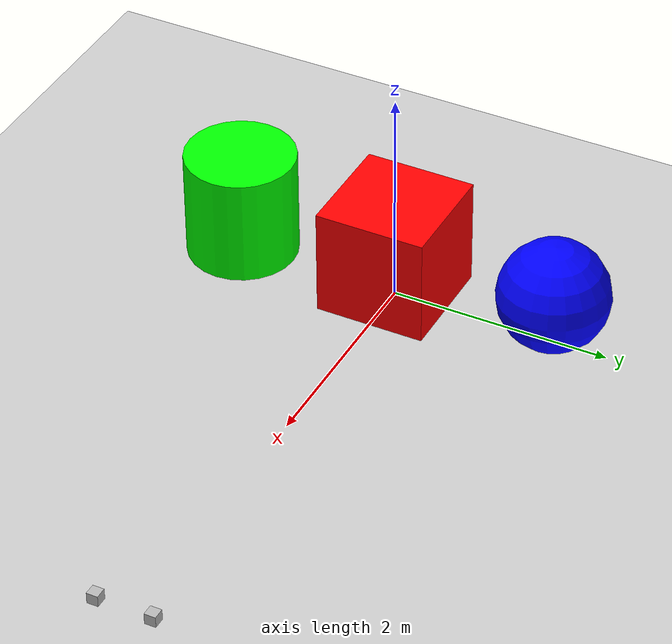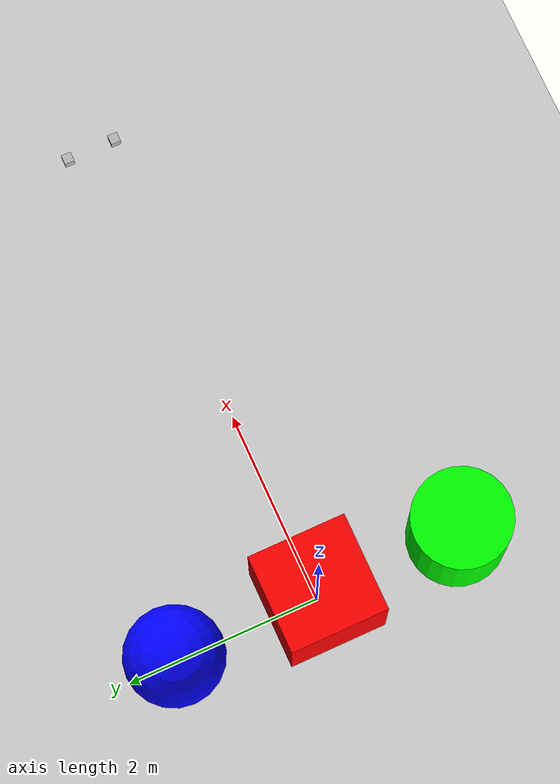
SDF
<?xml version="1.0" ?>

<sdf version="1.7">
  <world name="shapes">
    <plugin
      filename="gz-sim-apply-link-wrench-system"
      name="gz::sim::systems::ApplyLinkWrench">
    </plugin>

    <physics name="1ms" type="ode">
      <max_step_size>0.001</max_step_size>
      <real_time_factor>1.0</real_time_factor>
    </physics>
    <plugin
      filename="gz-sim-physics-system"
      name="gz::sim::systems::Physics">
    </plugin>
    <plugin
      filename="gz-sim-sensors-system"
      name="gz::sim::systems::Sensors">
      <render_engine>ogre2</render_engine>
    </plugin>
    <plugin
      filename="gz-sim-user-commands-system"
      name="gz::sim::systems::UserCommands">
    </plugin>
    <plugin
      filename="gz-sim-scene-broadcaster-system"
      name="gz::sim::systems::SceneBroadcaster">
    </plugin>

    <scene>
      <ambient>1.0 1.0 1.0</ambient>
      <background>0.8 0.8 0.8</background>
    </scene>

    <gui fullscreen="0">

      <!-- 3D scene -->
      <plugin filename="MinimalScene" name="3D View">
        <gz-gui>
          <title>3D View</title>
          <property type="bool" key="showTitleBar">false</property>
          <property type="string" key="state">docked</property>
        </gz-gui>

        <engine>ogre2</engine>
        <scene>scene</scene>
        <ambient_light>0.4 0.4 0.4</ambient_light>
        <background_color>0.8 0.8 0.8</background_color>
        <camera_pose>-6 0 6 0 0.5 0</camera_pose>
      </plugin>

      <!-- Plugins that add functionality to the scene -->
      <plugin filename="EntityContextMenuPlugin" name="Entity context menu">
        <gz-gui>
          <property key="state" type="string">floating</property>
          <property key="width" type="double">5</property>
          <property key="height" type="double">5</property>
          <property key="showTitleBar" type="bool">false</property>
        </gz-gui>
      </plugin>
      <plugin filename="GzSceneManager" name="Scene Manager">
        <gz-gui>
          <property key="resizable" type="bool">false</property>
          <property key="width" type="double">5</property>
          <property key="height" type="double">5</property>
          <property key="state" type="string">floating</property>
          <property key="showTitleBar" type="bool">false</property>
        </gz-gui>
      </plugin>
      <plugin filename="InteractiveViewControl" name="Interactive view control">
        <gz-gui>
          <property key="resizable" type="bool">false</property>
          <property key="width" type="double">5</property>
          <property key="height" type="double">5</property>
          <property key="state" type="string">floating</property>
          <property key="showTitleBar" type="bool">false</property>
        </gz-gui>
      </plugin>
      <plugin filename="CameraTracking" name="Camera Tracking">
        <gz-gui>
          <property key="resizable" type="bool">false</property>
          <property key="width" type="double">5</property>
          <property key="height" type="double">5</property>
          <property key="state" type="string">floating</property>
          <property key="showTitleBar" type="bool">false</property>
        </gz-gui>
      </plugin>
      <!-- World control -->
      <plugin filename="WorldControl" name="World control">
        <gz-gui>
          <title>World control</title>
          <property type="bool" key="showTitleBar">false</property>
          <property type="bool" key="resizable">false</property>
          <property type="double" key="height">72</property>
          <property type="double" key="z">1</property>

          <property type="string" key="state">floating</property>
          <anchors target="3D View">
            <line own="left" target="left"/>
            <line own="bottom" target="bottom"/>
          </anchors>
        </gz-gui>

        <play_pause>true</play_pause>
        <step>true</step>
        <start_paused>true</start_paused>
        <use_event>true</use_event>

      </plugin>

      <!-- World statistics -->
      <plugin filename="WorldStats" name="World stats">
        <gz-gui>
          <title>World stats</title>
          <property type="bool" key="showTitleBar">false</property>
          <property type="bool" key="resizable">false</property>
          <property type="double" key="height">110</property>
          <property type="double" key="width">290</property>
          <property type="double" key="z">1</property>

          <property type="string" key="state">floating</property>
          <anchors target="3D View">
            <line own="right" target="right"/>
            <line own="bottom" target="bottom"/>
          </anchors>
        </gz-gui>

        <sim_time>true</sim_time>
        <real_time>true</real_time>
        <real_time_factor>true</real_time_factor>
        <iterations>true</iterations>
      </plugin>

      <!-- Entity tree -->
      <plugin filename="ImageDisplay" name="Image Display">
        <gz-gui>
          <title>RGB camera 0x01</title>
          <property key="state" type="string">docked</property>
        </gz-gui>
        <topic>camera_0x01</topic>
        <topic_picker>false</topic_picker>
      </plugin>

      <plugin filename="ImageDisplay" name="Image Display">
        <gz-gui>
          <title>RGB camera 0x02</title>
          <property key="state" type="string">docked</property>
        </gz-gui>
        <topic>camera_0x02</topic>
        <topic_picker>false</topic_picker>
      </plugin>

      <!-- Inspector -->
      <plugin filename="ComponentInspector" name="Component inspector">
        <gz-gui>
          <property type="string" key="state">docked</property>
        </gz-gui>
      </plugin>

      <!-- Entity tree -->
      <plugin filename="EntityTree" name="Entity tree">
        <gz-gui>
          <property type="string" key="state">docked</property>
        </gz-gui>
      </plugin>
    </gui>

    <light type="directional" name="sun">
      <cast_shadows>true</cast_shadows>
      <pose>0 0 10 0 0 0</pose>
      <diffuse>0.8 0.8 0.8 1</diffuse>
      <specular>0.8 0.8 0.8 1</specular>
      <attenuation>
        <range>1000</range>
        <constant>0.9</constant>
        <linear>0.01</linear>
        <quadratic>0.001</quadratic>
      </attenuation>
      <direction>-0.5 0.1 -0.9</direction>
    </light>

    <model name="ground_plane">
      <static>true</static>
      <link name="link">
        <collision name="collision">
          <geometry>
            <plane>
              <normal>0 0 1</normal>
            </plane>
          </geometry>
        </collision>
        <visual name="visual">
          <geometry>
            <plane>
              <normal>0 0 1</normal>
              <size>100 100</size>
            </plane>
          </geometry>
          <material>
            <ambient>0.8 0.8 0.8 1</ambient>
            <diffuse>0.8 0.8 0.8 1</diffuse>
            <specular>0.8 0.8 0.8 1</specular>
          </material>
        </visual>
      </link>
    </model>

    <model name="box">
      <pose>0 0 0.5 0 0 0</pose>
      <link name="box_link">
        <inertial>
          <inertia>
            <ixx>1</ixx>
            <ixy>0</ixy>
            <ixz>0</ixz>
            <iyy>1</iyy>
            <iyz>0</iyz>
            <izz>1</izz>
          </inertia>
          <mass>1.0</mass>
        </inertial>
        <collision name="box_collision">
          <geometry>
            <box>
              <size>1 1 1</size>
            </box>
          </geometry>
        </collision>

        <visual name="box_visual">
          <visibility_flags>0x01</visibility_flags>
          <geometry>
            <box>
              <size>1 1 1</size>
            </box>
          </geometry>
          <material>
            <ambient>1 0 0 1</ambient>
            <diffuse>1 0 0 1</diffuse>
            <specular>1 0 0 1</specular>
          </material>
        </visual>
      </link>
    </model>

    <model name="cylinder">
      <pose>0 -1.5 0.5 0 0 0</pose>
      <link name="cylinder_link">
        <inertial>
          <inertia>
            <ixx>2</ixx>
            <ixy>0</ixy>
            <ixz>0</ixz>
            <iyy>2</iyy>
            <iyz>0</iyz>
            <izz>2</izz>
          </inertia>
          <mass>2.0</mass>
        </inertial>
        <collision name="cylinder_collision">
          <geometry>
            <cylinder>
              <radius>0.5</radius>
              <length>1.0</length>
            </cylinder>
          </geometry>
        </collision>

        <visual name="cylinder_visual">
          <visibility_flags>0x02</visibility_flags>
          <geometry>
            <cylinder>
              <radius>0.5</radius>
              <length>1.0</length>
            </cylinder>
          </geometry>
          <material>
            <ambient>0 1 0 1</ambient>
            <diffuse>0 1 0 1</diffuse>
            <specular>0 1 0 1</specular>
          </material>
          <cast_shadows>false</cast_shadows>
        </visual>
      </link>
    </model>

    <model name="sphere">
      <pose>0 1.5 0.5 0 0 0</pose>
      <link name="sphere_link">
        <inertial>
          <inertia>
            <ixx>3</ixx>
            <ixy>0</ixy>
            <ixz>0</ixz>
            <iyy>3</iyy>
            <iyz>0</iyz>
            <izz>3</izz>
          </inertia>
          <mass>3.0</mass>
        </inertial>
        <collision name="sphere_collision">
          <geometry>
            <sphere>
              <radius>0.5</radius>
            </sphere>
          </geometry>
        </collision>

        <visual name="sphere_visual">
          <visibility_flags>0x04</visibility_flags>
          <geometry>
            <sphere>
              <radius>0.5</radius>
            </sphere>
          </geometry>
          <material>
            <ambient>0 0 1 1</ambient>
            <diffuse>0 0 1 1</diffuse>
            <specular>0 0 1 1</specular>
          </material>
        </visual>
      </link>
    </model>

    <model name="camera_0x01">
      <static>true</static>
      <pose>5 0 0.5 0 0.0 3.14</pose>
      <link name="link">
        <pose>0.05 0.05 0.05 0 0 0</pose>
        <collision name="collision">
          <geometry>
            <box>
              <size>0.1 0.1 0.1</size>
            </box>
          </geometry>
        </collision>
        <visual name="visual">
          <geometry>
            <box>
              <size>0.1 0.1 0.1</size>
            </box>
          </geometry>
        </visual>
        <sensor name="camera_0x01" type="camera">
          <camera>
            <visibility_mask>0x01</visibility_mask>
            <horizontal_fov>1.047</horizontal_fov>
            <image>
              <width>320</width>
              <height>240</height>
            </image>
            <clip>
              <near>0.1</near>
              <far>100</far>
            </clip>
          </camera>
          <always_on>1</always_on>
          <update_rate>30</update_rate>
          <visualize>true</visualize>
          <topic>camera_0x01</topic>
        </sensor>
      </link>
    </model>

    <model name="camera_0x02">
      <static>true</static>
      <pose>5 0.5 0.5 0 0.0 3.14</pose>
      <link name="link">
        <pose>0.05 0.05 0.05 0 0 0</pose>
        <collision name="collision">
          <geometry>
            <box>
              <size>0.1 0.1 0.1</size>
            </box>
          </geometry>
        </collision>
        <visual name="visual">
          <geometry>
            <box>
              <size>0.1 0.1 0.1</size>
            </box>
          </geometry>
        </visual>
        <sensor name="camera_0x02" type="camera">
          <camera>
            <visibility_mask>0x02</visibility_mask>
            <horizontal_fov>1.047</horizontal_fov>
            <image>
              <width>320</width>
              <height>240</height>
            </image>
            <clip>
              <near>0.1</near>
              <far>100</far>
            </clip>
          </camera>
          <always_on>1</always_on>
          <update_rate>30</update_rate>
          <visualize>true</visualize>
          <topic>camera_0x02</topic>
        </sensor>
      </link>
    </model>

  </world>
</sdf>
